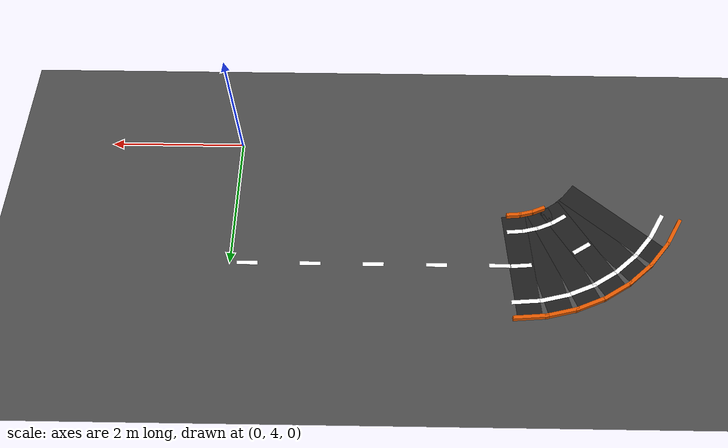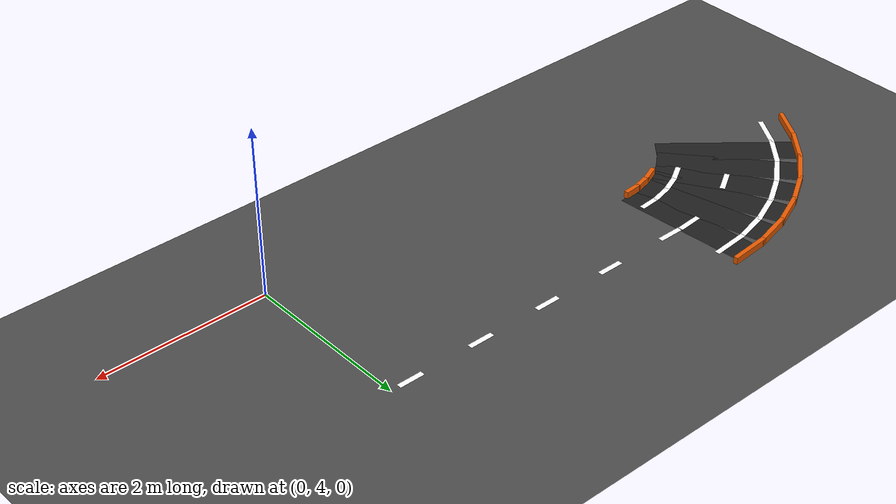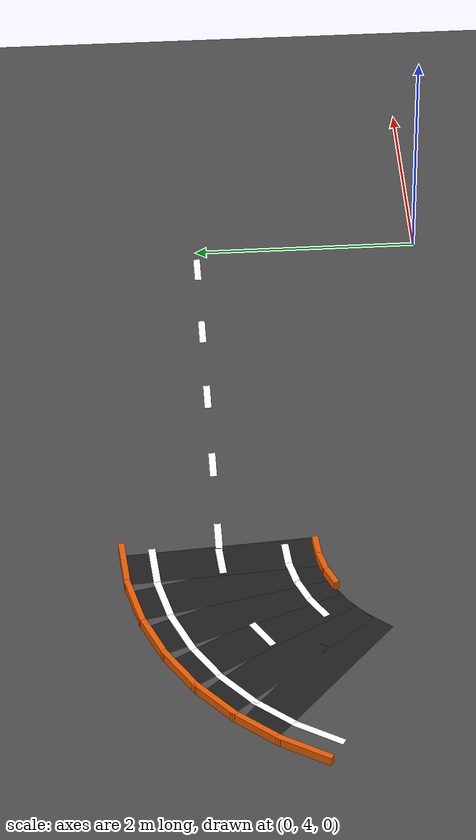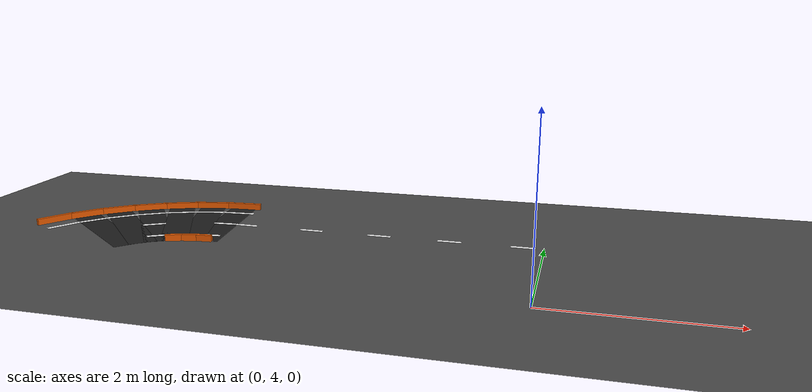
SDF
<sdf version="1.6">
 <world name="qcar_oval_wide">
  <model name="ground_plane">
   <static>true</static>
   <link name="link">
    <collision name="collision">
     <geometry><plane><normal>0 0 1</normal><size>200 200</size></plane></geometry>
    </collision>
    <visual name="visual">
     <geometry><plane><normal>0 0 1</normal><size>200 200</size></plane></geometry>
     <material><ambient>0.3 0.3 0.3 1</ambient><diffuse>0.3 0.3 0.3 1</diffuse></material>
    </visual>
   </link>
  </model>
  <model name="m19">
   <static>true</static>
   <pose>-3.8500 6.0000 0.00200 0 0 0.00000</pose>
   <link name="l">
    <visual name="v">
     <geometry><box><size>0.3000 0.0600 0.0010</size></box></geometry>
     <material><ambient>1 1 1 1</ambient><diffuse>1 1 1 1</diffuse></material>
    </visual>
   </link>
  </model>
  <model name="m20">
   <static>true</static>
   <pose>-2.9500 6.0000 0.00200 0 0 0.00000</pose>
   <link name="l">
    <visual name="v">
     <geometry><box><size>0.3000 0.0600 0.0010</size></box></geometry>
     <material><ambient>1 1 1 1</ambient><diffuse>1 1 1 1</diffuse></material>
    </visual>
   </link>
  </model>
  <model name="m21">
   <static>true</static>
   <pose>-2.0500 6.0000 0.00200 0 0 0.00000</pose>
   <link name="l">
    <visual name="v">
     <geometry><box><size>0.3000 0.0600 0.0010</size></box></geometry>
     <material><ambient>1 1 1 1</ambient><diffuse>1 1 1 1</diffuse></material>
    </visual>
   </link>
  </model>
  <model name="m22">
   <static>true</static>
   <pose>-1.1500 6.0000 0.00200 0 0 0.00000</pose>
   <link name="l">
    <visual name="v">
     <geometry><box><size>0.3000 0.0600 0.0010</size></box></geometry>
     <material><ambient>1 1 1 1</ambient><diffuse>1 1 1 1</diffuse></material>
    </visual>
   </link>
  </model>
  <model name="m23">
   <static>true</static>
   <pose>-0.2500 6.0000 0.00200 0 0 0.00000</pose>
   <link name="l">
    <visual name="v">
     <geometry><box><size>0.3000 0.0600 0.0010</size></box></geometry>
     <material><ambient>1 1 1 1</ambient><diffuse>1 1 1 1</diffuse></material>
    </visual>
   </link>
  </model>
  <model name="m164">
   <static>true</static>
   <pose>-4.1569 5.9938 0.00100 0 0 3.22013</pose>
   <link name="l">
    <visual name="v">
     <geometry><box><size>0.3519 1.6000 0.0010</size></box></geometry>
     <material><ambient>0.12 0.12 0.12 1</ambient><diffuse>0.12 0.12 0.12 1</diffuse></material>
    </visual>
   </link>
  </model>
  <model name="m165">
   <static>true</static>
   <pose>-4.0942 5.1963 0.04000 0 0 3.22013</pose>
   <link name="l">
    <visual name="v">
     <geometry><box><size>0.2111 0.0500 0.0800</size></box></geometry>
     <material><ambient>0.9 0.35 0.0 1</ambient><diffuse>0.9 0.35 0.0 1</diffuse></material>
    </visual>
   </link>
  </model>
  <model name="m166">
   <static>true</static>
   <pose>-4.2197 6.7914 0.04000 0 0 3.22013</pose>
   <link name="l">
    <visual name="v">
     <geometry><box><size>0.4926 0.0500 0.0800</size></box></geometry>
     <material><ambient>0.9 0.35 0.0 1</ambient><diffuse>0.9 0.35 0.0 1</diffuse></material>
    </visual>
   </link>
  </model>
  <model name="m167">
   <static>true</static>
   <pose>-4.1138 5.4455 0.00200 0 0 3.22013</pose>
   <link name="l">
    <visual name="v">
     <geometry><box><size>0.2551 0.0600 0.0010</size></box></geometry>
     <material><ambient>1 1 1 1</ambient><diffuse>1 1 1 1</diffuse></material>
    </visual>
   </link>
  </model>
  <model name="m168">
   <static>true</static>
   <pose>-4.2001 6.5421 0.00200 0 0 3.22013</pose>
   <link name="l">
    <visual name="v">
     <geometry><box><size>0.4486 0.0600 0.0010</size></box></geometry>
     <material><ambient>1 1 1 1</ambient><diffuse>1 1 1 1</diffuse></material>
    </visual>
   </link>
  </model>
  <model name="m169">
   <static>true</static>
   <pose>-4.1569 5.9938 0.00200 0 0 3.22013</pose>
   <link name="l">
    <visual name="v">
     <geometry><box><size>0.3000 0.0600 0.0010</size></box></geometry>
     <material><ambient>1 1 1 1</ambient><diffuse>1 1 1 1</diffuse></material>
    </visual>
   </link>
  </model>
  <model name="m170">
   <static>true</static>
   <pose>-4.4669 5.9447 0.00100 0 0 3.37721</pose>
   <link name="l">
    <visual name="v">
     <geometry><box><size>0.3519 1.6000 0.0010</size></box></geometry>
     <material><ambient>0.12 0.12 0.12 1</ambient><diffuse>0.12 0.12 0.12 1</diffuse></material>
    </visual>
   </link>
  </model>
  <model name="m171">
   <static>true</static>
   <pose>-4.2801 5.1668 0.04000 0 0 3.37721</pose>
   <link name="l">
    <visual name="v">
     <geometry><box><size>0.2111 0.0500 0.0800</size></box></geometry>
     <material><ambient>0.9 0.35 0.0 1</ambient><diffuse>0.9 0.35 0.0 1</diffuse></material>
    </visual>
   </link>
  </model>
  <model name="m172">
   <static>true</static>
   <pose>-4.6536 6.7226 0.04000 0 0 3.37721</pose>
   <link name="l">
    <visual name="v">
     <geometry><box><size>0.4926 0.0500 0.0800</size></box></geometry>
     <material><ambient>0.9 0.35 0.0 1</ambient><diffuse>0.9 0.35 0.0 1</diffuse></material>
    </visual>
   </link>
  </model>
  <model name="m173">
   <static>true</static>
   <pose>-4.3385 5.4099 0.00200 0 0 3.37721</pose>
   <link name="l">
    <visual name="v">
     <geometry><box><size>0.2551 0.0600 0.0010</size></box></geometry>
     <material><ambient>1 1 1 1</ambient><diffuse>1 1 1 1</diffuse></material>
    </visual>
   </link>
  </model>
  <model name="m174">
   <static>true</static>
   <pose>-4.5953 6.4795 0.00200 0 0 3.37721</pose>
   <link name="l">
    <visual name="v">
     <geometry><box><size>0.4486 0.0600 0.0010</size></box></geometry>
     <material><ambient>1 1 1 1</ambient><diffuse>1 1 1 1</diffuse></material>
    </visual>
   </link>
  </model>
  <model name="m175">
   <static>true</static>
   <pose>-4.7654 5.8478 0.00100 0 0 3.53429</pose>
   <link name="l">
    <visual name="v">
     <geometry><box><size>0.3519 1.6000 0.0010</size></box></geometry>
     <material><ambient>0.12 0.12 0.12 1</ambient><diffuse>0.12 0.12 0.12 1</diffuse></material>
    </visual>
   </link>
  </model>
  <model name="m176">
   <static>true</static>
   <pose>-4.4592 5.1087 0.04000 0 0 3.53429</pose>
   <link name="l">
    <visual name="v">
     <geometry><box><size>0.2111 0.0500 0.0800</size></box></geometry>
     <material><ambient>0.9 0.35 0.0 1</ambient><diffuse>0.9 0.35 0.0 1</diffuse></material>
    </visual>
   </link>
  </model>
  <model name="m177">
   <static>true</static>
   <pose>-5.0715 6.5869 0.04000 0 0 3.53429</pose>
   <link name="l">
    <visual name="v">
     <geometry><box><size>0.4926 0.0500 0.0800</size></box></geometry>
     <material><ambient>0.9 0.35 0.0 1</ambient><diffuse>0.9 0.35 0.0 1</diffuse></material>
    </visual>
   </link>
  </model>
  <model name="m178">
   <static>true</static>
   <pose>-4.5549 5.3396 0.00200 0 0 3.53429</pose>
   <link name="l">
    <visual name="v">
     <geometry><box><size>0.2551 0.0600 0.0010</size></box></geometry>
     <material><ambient>1 1 1 1</ambient><diffuse>1 1 1 1</diffuse></material>
    </visual>
   </link>
  </model>
  <model name="m179">
   <static>true</static>
   <pose>-4.9758 6.3559 0.00200 0 0 3.53429</pose>
   <link name="l">
    <visual name="v">
     <geometry><box><size>0.4486 0.0600 0.0010</size></box></geometry>
     <material><ambient>1 1 1 1</ambient><diffuse>1 1 1 1</diffuse></material>
    </visual>
   </link>
  </model>
  <model name="m180">
   <static>true</static>
   <pose>-5.0450 5.7053 0.00100 0 0 3.69137</pose>
   <link name="l">
    <visual name="v">
     <geometry><box><size>0.3519 1.6000 0.0010</size></box></geometry>
     <material><ambient>0.12 0.12 0.12 1</ambient><diffuse>0.12 0.12 0.12 1</diffuse></material>
    </visual>
   </link>
  </model>
  <model name="m182">
   <static>true</static>
   <pose>-5.4630 6.3874 0.04000 0 0 3.69137</pose>
   <link name="l">
    <visual name="v">
     <geometry><box><size>0.4926 0.0500 0.0800</size></box></geometry>
     <material><ambient>0.9 0.35 0.0 1</ambient><diffuse>0.9 0.35 0.0 1</diffuse></material>
    </visual>
   </link>
  </model>
  <model name="m183">
   <static>true</static>
   <pose>-4.7576 5.2363 0.00200 0 0 3.69137</pose>
   <link name="l">
    <visual name="v">
     <geometry><box><size>0.2551 0.0600 0.0010</size></box></geometry>
     <material><ambient>1 1 1 1</ambient><diffuse>1 1 1 1</diffuse></material>
    </visual>
   </link>
  </model>
  <model name="m184">
   <static>true</static>
   <pose>-5.3324 6.1742 0.00200 0 0 3.69137</pose>
   <link name="l">
    <visual name="v">
     <geometry><box><size>0.4486 0.0600 0.0010</size></box></geometry>
     <material><ambient>1 1 1 1</ambient><diffuse>1 1 1 1</diffuse></material>
    </visual>
   </link>
  </model>
  <model name="m185">
   <static>true</static>
   <pose>-5.0450 5.7053 0.00200 0 0 3.69137</pose>
   <link name="l">
    <visual name="v">
     <geometry><box><size>0.3000 0.0600 0.0010</size></box></geometry>
     <material><ambient>1 1 1 1</ambient><diffuse>1 1 1 1</diffuse></material>
    </visual>
   </link>
  </model>
  <model name="m186">
   <static>true</static>
   <pose>-5.2989 5.5208 0.00100 0 0 3.84845</pose>
   <link name="l">
    <visual name="v">
     <geometry><box><size>0.3519 1.6000 0.0010</size></box></geometry>
     <material><ambient>0.12 0.12 0.12 1</ambient><diffuse>0.12 0.12 0.12 1</diffuse></material>
    </visual>
   </link>
  </model>
  <model name="m188">
   <static>true</static>
   <pose>-5.8185 6.1291 0.04000 0 0 3.84845</pose>
   <link name="l">
    <visual name="v">
     <geometry><box><size>0.4926 0.0500 0.0800</size></box></geometry>
     <material><ambient>0.9 0.35 0.0 1</ambient><diffuse>0.9 0.35 0.0 1</diffuse></material>
    </visual>
   </link>
  </model>
  <model name="m190">
   <static>true</static>
   <pose>-5.6561 5.9390 0.00200 0 0 3.84845</pose>
   <link name="l">
    <visual name="v">
     <geometry><box><size>0.4486 0.0600 0.0010</size></box></geometry>
     <material><ambient>1 1 1 1</ambient><diffuse>1 1 1 1</diffuse></material>
    </visual>
   </link>
  </model>
  <model name="m191">
   <static>true</static>
   <pose>-5.5208 5.2989 0.00100 0 0 4.00553</pose>
   <link name="l">
    <visual name="v">
     <geometry><box><size>0.3519 1.6000 0.0010</size></box></geometry>
     <material><ambient>0.12 0.12 0.12 1</ambient><diffuse>0.12 0.12 0.12 1</diffuse></material>
    </visual>
   </link>
  </model>
  <model name="m193">
   <static>true</static>
   <pose>-6.1291 5.8185 0.04000 0 0 4.00553</pose>
   <link name="l">
    <visual name="v">
     <geometry><box><size>0.4926 0.0500 0.0800</size></box></geometry>
     <material><ambient>0.9 0.35 0.0 1</ambient><diffuse>0.9 0.35 0.0 1</diffuse></material>
    </visual>
   </link>
  </model>
  <model name="m195">
   <static>true</static>
   <pose>-5.9390 5.6561 0.00200 0 0 4.00553</pose>
   <link name="l">
    <visual name="v">
     <geometry><box><size>0.4486 0.0600 0.0010</size></box></geometry>
     <material><ambient>1 1 1 1</ambient><diffuse>1 1 1 1</diffuse></material>
    </visual>
   </link>
  </model>
  <model name="m198">
   <static>true</static>
   <pose>-6.3874 5.4630 0.04000 0 0 4.16261</pose>
   <link name="l">
    <visual name="v">
     <geometry><box><size>0.4926 0.0500 0.0800</size></box></geometry>
     <material><ambient>0.9 0.35 0.0 1</ambient><diffuse>0.9 0.35 0.0 1</diffuse></material>
    </visual>
   </link>
  </model>
  <model name="m200">
   <static>true</static>
   <pose>-6.1742 5.3324 0.00200 0 0 4.16261</pose>
   <link name="l">
    <visual name="v">
     <geometry><box><size>0.4486 0.0600 0.0010</size></box></geometry>
     <material><ambient>1 1 1 1</ambient><diffuse>1 1 1 1</diffuse></material>
    </visual>
   </link>
  </model>
 </world>
</sdf>
